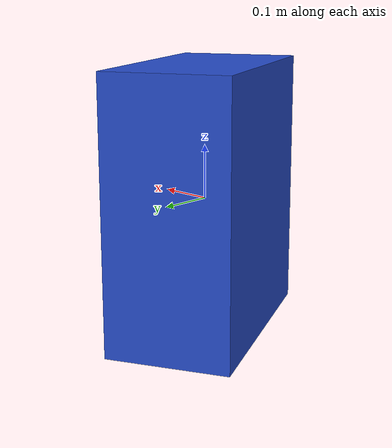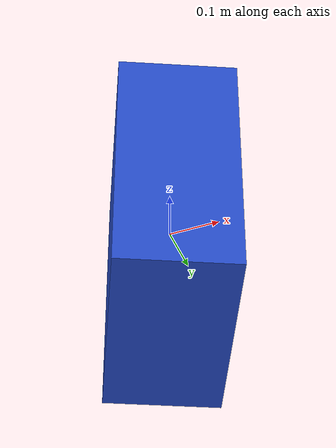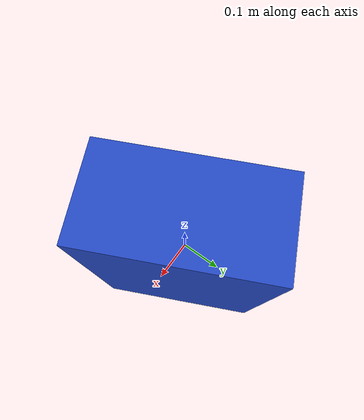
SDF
<sdf version="1.6"><model name="model_5"><link name="link"><pose>0 0 0 0 0 2.009473374879602</pose><gravity>true</gravity><static>true</static><inertial><mass>1.0</mass><inertia><ixx>0.16666</ixx><ixy>0</ixy><ixz>0</ixz><iyy>0.16666</iyy><iyz>0</iyz><izz>0.16666</izz></inertia></inertial><collision name="collision"><geometry><box><size>0.4240721511699378 0.22859762845079376 0.5</size></box></geometry></collision><visual name="visual"><geometry><box><size>0.4240721511699378 0.22859762845079376 0.5</size></box></geometry><material><script><name>Gazebo/Blue</name><uri>file://media/materials/scripts/gazebo.material</uri></script></material></visual></link></model></sdf>
